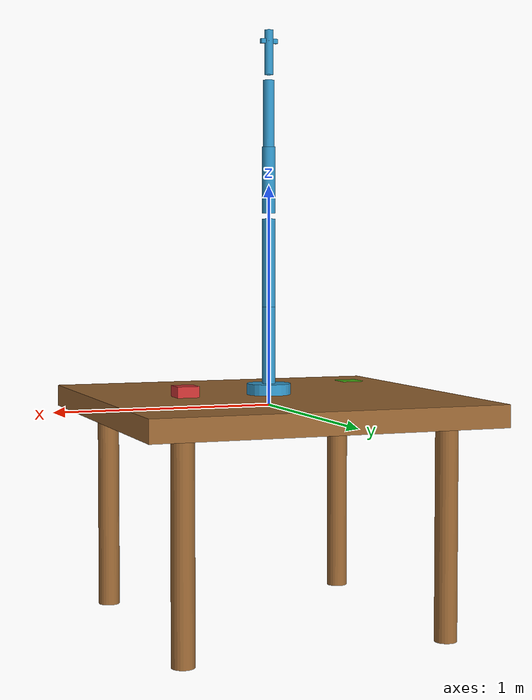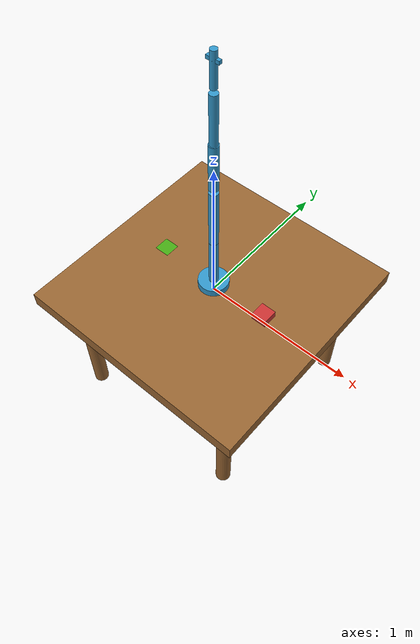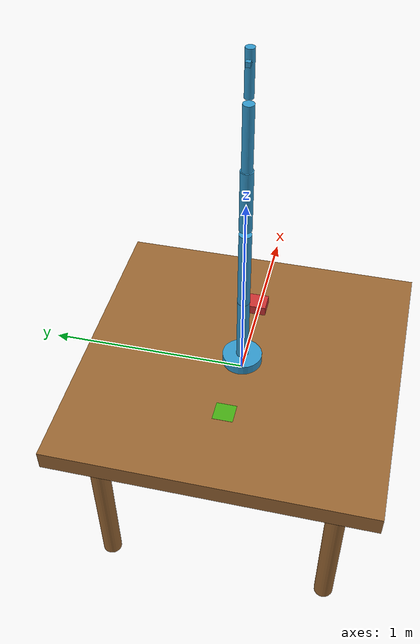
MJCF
<mujoco model="6DOF Robot Arm with Grasping Scene">
  <compiler angle="radian" inertiafromgeom="true"/>
  <option timestep="0.001" iterations="100" tolerance="1e-8"/>

  <!-- 视觉渲染配置 -->
  <visual>
    <global azimuth="135" elevation="-30" distance="2.5"/>
  </visual>

  <!-- 材质定义（区分物体/机械臂/易碎品） -->
  <asset>
    <material name="robot_mat" rgba="0.2 0.6 0.8 1"/>
    <material name="object_mat" rgba="0.8 0.2 0.2 1"/>
    <material name="fragile_mat" rgba="0.8 0.8 0.8 0.9"/>
    <material name="table_mat" rgba="0.6 0.4 0.2 1"/>
  </asset>

  <!-- 世界body -->
  <worldbody>
    <!-- 桌面 -->
    <body name="table" pos="0 0 0">
      <geom name="table_top" type="box" size="0.8 0.8 0.05" pos="0 0 0" material="table_mat"/>
      <geom name="table_leg1" type="cylinder" size="0.05 0.5" pos="-0.6 -0.6 -0.5" material="table_mat"/>
      <geom name="table_leg2" type="cylinder" size="0.05 0.5" pos="0.6 -0.6 -0.5" material="table_mat"/>
      <geom name="table_leg3" type="cylinder" size="0.05 0.5" pos="-0.6 0.6 -0.5" material="table_mat"/>
      <geom name="table_leg4" type="cylinder" size="0.05 0.5" pos="0.6 0.6 -0.5" material="table_mat"/>
    </body>

    <!-- 6自由度机械臂 -->
    <body name="base" pos="0 0 0.05">
      <geom name="base_geom" type="cylinder" size="0.1 0.05" material="robot_mat"/>
      <joint name="joint1" type="hinge" axis="0 0 1" pos="0 0 0" range="-3.14 3.14"/>

      <body name="link1" pos="0 0 0.1">
        <geom name="link1_geom" type="cylinder" size="0.03 0.2" pos="0 0 0.1" material="robot_mat"/>
        <joint name="joint2" type="hinge" axis="0 1 0" pos="0 0 0.2" range="-1.57 1.57"/>

        <body name="link2" pos="0 0 0.4">
          <geom name="link2_geom" type="cylinder" size="0.03 0.2" pos="0 0 0.1" material="robot_mat"/>
          <joint name="joint3" type="hinge" axis="0 1 0" pos="0 0 0.2" range="-1.57 1.57"/>

          <body name="link3" pos="0 0 0.4">
            <geom name="link3_geom" type="cylinder" size="0.03 0.15" pos="0 0 0.075" material="robot_mat"/>
            <joint name="joint4" type="hinge" axis="0 1 0" pos="0 0 0.15" range="-1.57 1.57"/>

            <body name="link4" pos="0 0 0.3">
              <geom name="link4_geom" type="cylinder" size="0.025 0.15" pos="0 0 0.075" material="robot_mat"/>
              <joint name="joint5" type="hinge" axis="1 0 0" pos="0 0 0.15" range="-1.57 1.57"/>

              <body name="link5" pos="0 0 0.3">
                <geom name="link5_geom" type="cylinder" size="0.02 0.1" pos="0 0 0.05" material="robot_mat"/>
                <joint name="joint6" type="hinge" axis="0 1 0" pos="0 0 0.1" range="-3.14 3.14"/>

                <!-- 末端执行器（夹爪） -->
                <body name="end_effector" pos="0 0 0.1">
                  <geom name="ee_geom" type="sphere" size="0.02" pos="0 0 0" material="robot_mat"/>
                  <!-- 力传感器（检测接触力） -->
                  <sensor name="force_sensor" type="force" site="ee_site"/>
                  <site name="ee_site" pos="0 0 0" size="0.01"/>

                  <!-- 夹爪左指 -->
                  <body name="gripper_left" pos="0.02 0 0">
                    <geom name="gripper_left_geom" type="box" size="0.02 0.01 0.01" material="robot_mat"/>
                    <joint name="gripper_left_joint" type="slide" axis="1 0 0" pos="0 0 0" range="0 0.04"/>
                  </body>
                  <!-- 夹爪右指 -->
                  <body name="gripper_right" pos="-0.02 0 0">
                    <geom name="gripper_right_geom" type="box" size="0.02 0.01 0.01" material="robot_mat"/>
                    <joint name="gripper_right_joint" type="slide" axis="1 0 0" pos="0 0 0" range="-0.04 0"/>
                  </body>
                </body>
              </body>
            </body>
          </body>
        </body>
      </body>
    </body>

    <!-- 目标物体（立方体） -->
    <body name="target_object" pos="0.4 0 0.05">
      <geom name="object_geom" type="box" size="0.05 0.05 0.05" material="object_mat"/>
      <freejoint name="object_freejoint"/>
    </body>

    <!-- 目标放置位置 -->
    <body name="goal_position" pos="-0.4 0 0.1">
      <geom name="goal_geom" type="box" size="0.05 0.05 0.001" rgba="0 1 0 0.5" material="object_mat"/>
    </body>
  </worldbody>

  <!-- 控制器配置 -->
  <actuator>
    <!-- 关节力矩控制 -->
    <motor name="joint1_motor" joint="joint1" ctrlrange="-5 5" gear="100"/>
    <motor name="joint2_motor" joint="joint2" ctrlrange="-5 5" gear="100"/>
    <motor name="joint3_motor" joint="joint3" ctrlrange="-5 5" gear="100"/>
    <motor name="joint4_motor" joint="joint4" ctrlrange="-5 5" gear="100"/>
    <motor name="joint5_motor" joint="joint5" ctrlrange="-5 5" gear="100"/>
    <motor name="joint6_motor" joint="joint6" ctrlrange="-5 5" gear="100"/>
    <!-- 夹爪控制 -->
    <motor name="gripper_left_motor" joint="gripper_left_joint" ctrlrange="0 10" gear="50"/>
    <motor name="gripper_right_motor" joint="gripper_right_joint" ctrlrange="-10 0" gear="50"/>
  </actuator>
</mujoco>
